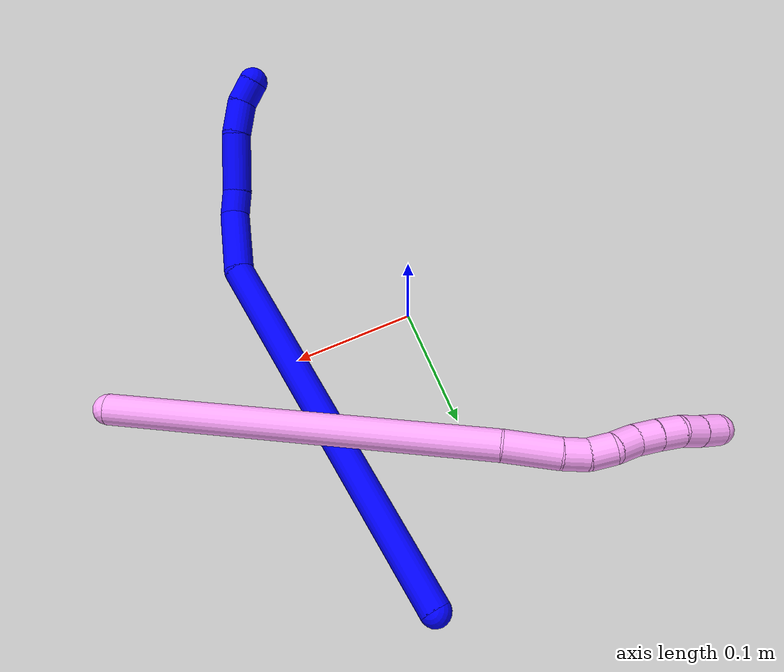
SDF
<sdf version="1.7">
 <world name="default">
  <model name="photoneo_s_sensor">
   <static>1</static>
   <pose>0 0 2 1.57079 1.57079 3.14159</pose>
   <link name="link">
    <inertial><mass>0.1</mass></inertial>
    <sensor name="sensor" type="depth">
     <update_rate>30</update_rate>
     <camera>
      <horizontal_fov>1.22</horizontal_fov>
      <image><width>1920</width><height>1200</height><format>B8G8R8</format></image>
      <clip><near>0.1</near><far>4</far></clip>
      <depth_camera><output>points</output></depth_camera>
     </camera>
     <plugin name="camera_plugin" filename="libgazebo_ros_depth_camera.so">
      <baseline>0.2</baseline>
      <alwaysOn>1</alwaysOn>
      <updateRate>0.0</updateRate>
      <cameraName>camera_ir</cameraName>
      <imageTopicName>/camera/color/image_raw</imageTopicName>
      <cameraInfoTopicName>/camera/color/camera_info</cameraInfoTopicName>
      <depthImageTopicName>/camera/depth/image_raw</depthImageTopicName>
      <depthImageCameraInfoTopicName>/camera/depth/camera_info</depthImageCameraInfoTopicName>
      <pointCloudTopicName>/camera/depth/points</pointCloudTopicName>
      <frameName>fr_optical</frameName>
      <pointCloudCutoff>0.1</pointCloudCutoff>
      <pointCloudCutoffMax>2.0</pointCloudCutoffMax>
      <distortionK1>0</distortionK1>
      <distortionK2>0</distortionK2>
      <distortionK3>0</distortionK3>
      <distortionT1>0</distortionT1>
      <distortionT2>0</distortionT2>
      <CxPrime>0</CxPrime>
      <Cx>0</Cx>
      <Cy>0</Cy>
      <focalLength>0</focalLength>
      <hackBaseline>0</hackBaseline>
     </plugin>
    </sensor>
   </link>
  </model>
  <model name="bin">
   <static>1</static>
   <link name="bottom">
    <collision name="collision-bottom">
     <pose>0 0 -0.01 0 -0 0</pose>
     <geometry><box><size>0.8 0.6 0.02</size></box></geometry>
     <surface>
      <friction><ode><mu>100</mu><mu2>100</mu2></ode></friction>
      <contact><collide_bitmask>65535</collide_bitmask></contact>
     </surface>
    </collision>
   </link>
   <link name="west_wall">
    <collision name="collision-west_wall">
     <pose>-0.41 0 0.1 0 -0 0</pose>
     <geometry><box><size>0.02 0.6 0.2</size></box></geometry>
     <surface>
      <friction><ode><mu>100</mu><mu2>100</mu2></ode></friction>
      <contact><collide_bitmask>65535</collide_bitmask></contact>
     </surface>
    </collision>
   </link>
   <link name="east_wall">
    <collision name="collision-east_wall">
     <pose>0.41 0 0.1 0 -0 0</pose>
     <geometry><box><size>0.02 0.6 0.2</size></box></geometry>
     <surface>
      <friction><ode><mu>100</mu><mu2>100</mu2></ode></friction>
      <contact><collide_bitmask>65535</collide_bitmask></contact>
     </surface>
    </collision>
   </link>
   <link name="south_wall">
    <collision name="collision-south_wall">
     <pose>0 -0.31 0.1 0 -0 0</pose>
     <geometry><box><size>0.8 0.02 0.2</size></box></geometry>
     <surface>
      <friction><ode><mu>100</mu><mu2>100</mu2></ode></friction>
      <contact><collide_bitmask>65535</collide_bitmask></contact>
     </surface>
    </collision>
   </link>
   <link name="north_wall">
    <collision name="collision-north_wall">
     <pose>0 0.31 0.1 0 -0 0</pose>
     <geometry><box><size>0.8 0.02 0.2</size></box></geometry>
     <surface>
      <friction><ode><mu>100</mu><mu2>100</mu2></ode></friction>
      <contact><collide_bitmask>65535</collide_bitmask></contact>
     </surface>
    </collision>
   </link>
  </model>
  <model name="1">
   <static>0</static>
   <link name="1">
    <collision name="collision-cylinder-e_1_1_4">
     <pose>0.01996 -0.154955 0.041575 1.30867 0.123776 0.094994</pose>
     <geometry><cylinder><radius>0.0125</radius><length>0.323344</length></cylinder></geometry>
     <surface>
      <friction><ode><mu>1.16</mu><mu2>1.16</mu2><slip1>0</slip1><slip2>0</slip2></ode></friction>
      <contact><ode><kp>1e+06</kp><kd>1</kd><max_vel>0</max_vel><min_depth>0.001</min_depth></ode></contact>
     </surface>
    </collision>
    <visual name="visual-cylinder-e_1_1_4">
     <pose>0.01996 -0.154955 0.041575 1.30867 0.123776 0.094994</pose>
     <geometry><cylinder><radius>0.0125</radius><length>0.323344</length></cylinder></geometry>
     <material><ambient>0 0 1 1</ambient></material>
    </visual>
    <collision name="collision-cylinder-e_2_4_5">
     <pose>0.033247 -0.336277 0.086145 1.45767 -0.246366 -0.220187</pose>
     <geometry><cylinder><radius>0.0125</radius><length>0.054728</length></cylinder></geometry>
     <surface>
      <friction><ode><mu>1.16</mu><mu2>1.16</mu2><slip1>0</slip1><slip2>0</slip2></ode></friction>
      <contact><ode><kp>1e+06</kp><kd>1</kd><max_vel>0</max_vel><min_depth>0.001</min_depth></ode></contact>
     </surface>
    </collision>
    <visual name="visual-cylinder-e_2_4_5">
     <pose>0.033247 -0.336277 0.086145 1.45767 -0.246366 -0.220187</pose>
     <geometry><cylinder><radius>0.0125</radius><length>0.054728</length></cylinder></geometry>
     <material><ambient>0 0 1 1</ambient></material>
    </visual>
    <collision name="collision-cylinder-e_3_5_6">
     <pose>0.021088 -0.371296 0.092104 1.24076 -0.540272 -0.390643</pose>
     <geometry><cylinder><radius>0.0125</radius><length>0.021325</length></cylinder></geometry>
     <surface>
      <friction><ode><mu>1.16</mu><mu2>1.16</mu2><slip1>0</slip1><slip2>0</slip2></ode></friction>
      <contact><ode><kp>1e+06</kp><kd>1</kd><max_vel>0</max_vel><min_depth>0.001</min_depth></ode></contact>
     </surface>
    </collision>
    <visual name="visual-cylinder-e_3_5_6">
     <pose>0.021088 -0.371296 0.092104 1.24076 -0.540272 -0.390643</pose>
     <geometry><cylinder><radius>0.0125</radius><length>0.021325</length></cylinder></geometry>
     <material><ambient>0 0 1 1</ambient></material>
    </visual>
    <collision name="collision-cylinder-e_4_6_7">
     <pose>0.003726 -0.399275 0.105463 1.07734 -0.496069 -0.300417</pose>
     <geometry><cylinder><radius>0.0125</radius><length>0.049909</length></cylinder></geometry>
     <surface>
      <friction><ode><mu>1.16</mu><mu2>1.16</mu2><slip1>0</slip1><slip2>0</slip2></ode></friction>
      <contact><ode><kp>1e+06</kp><kd>1</kd><max_vel>0</max_vel><min_depth>0.001</min_depth></ode></contact>
     </surface>
    </collision>
    <visual name="visual-cylinder-e_4_6_7">
     <pose>0.003726 -0.399275 0.105463 1.07734 -0.496069 -0.300417</pose>
     <geometry><cylinder><radius>0.0125</radius><length>0.049909</length></cylinder></geometry>
     <material><ambient>0 0 1 1</ambient></material>
    </visual>
    <collision name="collision-cylinder-e_5_7_8">
     <pose>-0.016408 -0.430213 0.119045 1.30289 -0.601119 -0.464148</pose>
     <geometry><cylinder><radius>0.0125</radius><length>0.029196</length></cylinder></geometry>
     <surface>
      <friction><ode><mu>1.16</mu><mu2>1.16</mu2><slip1>0</slip1><slip2>0</slip2></ode></friction>
      <contact><ode><kp>1e+06</kp><kd>1</kd><max_vel>0</max_vel><min_depth>0.001</min_depth></ode></contact>
     </surface>
    </collision>
    <visual name="visual-cylinder-e_5_7_8">
     <pose>-0.016408 -0.430213 0.119045 1.30289 -0.601119 -0.464148</pose>
     <geometry><cylinder><radius>0.0125</radius><length>0.029196</length></cylinder></geometry>
     <material><ambient>0 0 1 1</ambient></material>
    </visual>
    <collision name="collision-cylinder-e_6_8_2">
     <pose>-0.0336 -0.447507 0.124067 1.25864 -0.981596 -0.742137</pose>
     <geometry><cylinder><radius>0.0125</radius><length>0.021498</length></cylinder></geometry>
     <surface>
      <friction><ode><mu>1.16</mu><mu2>1.16</mu2><slip1>0</slip1><slip2>0</slip2></ode></friction>
      <contact><ode><kp>1e+06</kp><kd>1</kd><max_vel>0</max_vel><min_depth>0.001</min_depth></ode></contact>
     </surface>
    </collision>
    <visual name="visual-cylinder-e_6_8_2">
     <pose>-0.0336 -0.447507 0.124067 1.25864 -0.981596 -0.742137</pose>
     <geometry><cylinder><radius>0.0125</radius><length>0.021498</length></cylinder></geometry>
     <material><ambient>0 0 1 1</ambient></material>
    </visual>
    <collision name="collision-sphere-2">
     <pose>-0.042537 -0.453191 0.125901 0 -0 0</pose>
     <geometry><sphere><radius>0.0125</radius></sphere></geometry>
     <surface>
      <friction><ode><mu>1.16</mu><mu2>1.16</mu2><slip1>0</slip1><slip2>0</slip2></ode></friction>
      <contact><ode><kp>1e+06</kp><kd>1</kd><max_vel>0</max_vel><min_depth>0.001</min_depth></ode></contact>
     </surface>
    </collision>
    <visual name="visual-sphere-2">
     <pose>-0.042537 -0.453191 0.125901 0 -0 0</pose>
     <geometry><sphere><radius>0.0125</radius></sphere></geometry>
     <material><ambient>0 0 1 1</ambient></material>
    </visual>
    <collision name="collision-sphere-4">
     <pose>0.03992 -0.309909 0.08315 0 -0 0</pose>
     <geometry><sphere><radius>0.0125</radius></sphere></geometry>
     <surface>
      <friction><ode><mu>1.16</mu><mu2>1.16</mu2><slip1>0</slip1><slip2>0</slip2></ode></friction>
      <contact><ode><kp>1e+06</kp><kd>1</kd><max_vel>0</max_vel><min_depth>0.001</min_depth></ode></contact>
     </surface>
    </collision>
    <visual name="visual-sphere-4">
     <pose>0.03992 -0.309909 0.08315 0 -0 0</pose>
     <geometry><sphere><radius>0.0125</radius></sphere></geometry>
     <material><ambient>0 0 1 1</ambient></material>
    </visual>
    <collision name="collision-sphere-1">
     <geometry><sphere><radius>0.0125</radius></sphere></geometry>
     <surface>
      <friction><ode><mu>1.16</mu><mu2>1.16</mu2><slip1>0</slip1><slip2>0</slip2></ode></friction>
      <contact><ode><kp>1e+06</kp><kd>1</kd><max_vel>0</max_vel><min_depth>0.001</min_depth></ode></contact>
     </surface>
    </collision>
    <visual name="visual-sphere-1">
     <geometry><sphere><radius>0.0125</radius></sphere></geometry>
     <material><ambient>0 0 1 1</ambient></material>
    </visual>
    <collision name="collision-sphere-8">
     <pose>-0.024664 -0.441822 0.122232 0 -0 0</pose>
     <geometry><sphere><radius>0.0125</radius></sphere></geometry>
     <surface>
      <friction><ode><mu>1.16</mu><mu2>1.16</mu2><slip1>0</slip1><slip2>0</slip2></ode></friction>
      <contact><ode><kp>1e+06</kp><kd>1</kd><max_vel>0</max_vel><min_depth>0.001</min_depth></ode></contact>
     </surface>
    </collision>
    <visual name="visual-sphere-8">
     <pose>-0.024664 -0.441822 0.122232 0 -0 0</pose>
     <geometry><sphere><radius>0.0125</radius></sphere></geometry>
     <material><ambient>0 0 1 1</ambient></material>
    </visual>
    <collision name="collision-sphere-5">
     <pose>0.026573 -0.362645 0.089141 0 -0 0</pose>
     <geometry><sphere><radius>0.0125</radius></sphere></geometry>
     <surface>
      <friction><ode><mu>1.16</mu><mu2>1.16</mu2><slip1>0</slip1><slip2>0</slip2></ode></friction>
      <contact><ode><kp>1e+06</kp><kd>1</kd><max_vel>0</max_vel><min_depth>0.001</min_depth></ode></contact>
     </surface>
    </collision>
    <visual name="visual-sphere-5">
     <pose>0.026573 -0.362645 0.089141 0 -0 0</pose>
     <geometry><sphere><radius>0.0125</radius></sphere></geometry>
     <material><ambient>0 0 1 1</ambient></material>
    </visual>
    <collision name="collision-sphere-6">
     <pose>0.015604 -0.379946 0.095068 0 -0 0</pose>
     <geometry><sphere><radius>0.0125</radius></sphere></geometry>
     <surface>
      <friction><ode><mu>1.16</mu><mu2>1.16</mu2><slip1>0</slip1><slip2>0</slip2></ode></friction>
      <contact><ode><kp>1e+06</kp><kd>1</kd><max_vel>0</max_vel><min_depth>0.001</min_depth></ode></contact>
     </surface>
    </collision>
    <visual name="visual-sphere-6">
     <pose>0.015604 -0.379946 0.095068 0 -0 0</pose>
     <geometry><sphere><radius>0.0125</radius></sphere></geometry>
     <material><ambient>0 0 1 1</ambient></material>
    </visual>
    <collision name="collision-sphere-7">
     <pose>-0.008151 -0.418603 0.115859 0 -0 0</pose>
     <geometry><sphere><radius>0.0125</radius></sphere></geometry>
     <surface>
      <friction><ode><mu>1.16</mu><mu2>1.16</mu2><slip1>0</slip1><slip2>0</slip2></ode></friction>
      <contact><ode><kp>1e+06</kp><kd>1</kd><max_vel>0</max_vel><min_depth>0.001</min_depth></ode></contact>
     </surface>
    </collision>
    <visual name="visual-sphere-7">
     <pose>-0.008151 -0.418603 0.115859 0 -0 0</pose>
     <geometry><sphere><radius>0.0125</radius></sphere></geometry>
     <material><ambient>0 0 1 1</ambient></material>
    </visual>
    <inertial>
     <pose>0.015416 -0.237067 0.063056 0 -0 0</pose>
     <mass>0.5</mass>
     <inertia>
      <ixx>0.003079</ixx>
      <ixy>0</ixy>
      <ixz>0</ixz>
      <iyy>0.000997</iyy>
      <iyz>0</iyz>
      <izz>0.002416</izz>
     </inertia>
    </inertial>
   </link>
   <pose>0.076928 0.228733 0.011498 0.211923 0.383434 -0.004764</pose>
  </model>
  <model name="4">
   <static>0</static>
   <link name="4">
    <collision name="collision-cylinder-e_1_1_4">
     <pose>-0.074971 -0.001841 0.138414 0.013303 -0.496365 -0.003371</pose>
     <geometry><cylinder><radius>0.0125</radius><length>0.31485</length></cylinder></geometry>
     <surface>
      <friction><ode><mu>1.16</mu><mu2>1.16</mu2><slip1>0</slip1><slip2>0</slip2></ode></friction>
      <contact><ode><kp>1e+06</kp><kd>1</kd><max_vel>0</max_vel><min_depth>0.001</min_depth></ode></contact>
     </surface>
    </collision>
    <visual name="visual-cylinder-e_1_1_4">
     <pose>-0.074971 -0.001841 0.138414 0.013303 -0.496365 -0.003371</pose>
     <geometry><cylinder><radius>0.0125</radius><length>0.31485</length></cylinder></geometry>
     <material><ambient>1 0.65098 0.996078 1</ambient></material>
    </visual>
    <collision name="collision-cylinder-e_2_4_5">
     <pose>-0.162949 -0.005484 0.294618 0.100904 -0.628938 -0.032845</pose>
     <geometry><cylinder><radius>0.0125</radius><length>0.044222</length></cylinder></geometry>
     <surface>
      <friction><ode><mu>1.16</mu><mu2>1.16</mu2><slip1>0</slip1><slip2>0</slip2></ode></friction>
      <contact><ode><kp>1e+06</kp><kd>1</kd><max_vel>0</max_vel><min_depth>0.001</min_depth></ode></contact>
     </surface>
    </collision>
    <visual name="visual-cylinder-e_2_4_5">
     <pose>-0.162949 -0.005484 0.294618 0.100904 -0.628938 -0.032845</pose>
     <geometry><cylinder><radius>0.0125</radius><length>0.044222</length></cylinder></geometry>
     <material><ambient>1 0.65098 0.996078 1</ambient></material>
    </visual>
    <collision name="collision-cylinder-e_3_5_6">
     <pose>-0.181983 -0.009536 0.32034 0.276418 -0.631136 -0.090761</pose>
     <geometry><cylinder><radius>0.0125</radius><length>0.020428</length></cylinder></geometry>
     <surface>
      <friction><ode><mu>1.16</mu><mu2>1.16</mu2><slip1>0</slip1><slip2>0</slip2></ode></friction>
      <contact><ode><kp>1e+06</kp><kd>1</kd><max_vel>0</max_vel><min_depth>0.001</min_depth></ode></contact>
     </surface>
    </collision>
    <visual name="visual-cylinder-e_3_5_6">
     <pose>-0.181983 -0.009536 0.32034 0.276418 -0.631136 -0.090761</pose>
     <geometry><cylinder><radius>0.0125</radius><length>0.020428</length></cylinder></geometry>
     <material><ambient>1 0.65098 0.996078 1</ambient></material>
    </visual>
    <collision name="collision-cylinder-e_4_6_7">
     <pose>-0.191842 -0.015683 0.336789 0.429231 -0.388353 -0.085678</pose>
     <geometry><cylinder><radius>0.0125</radius><length>0.020237</length></cylinder></geometry>
     <surface>
      <friction><ode><mu>1.16</mu><mu2>1.16</mu2><slip1>0</slip1><slip2>0</slip2></ode></friction>
      <contact><ode><kp>1e+06</kp><kd>1</kd><max_vel>0</max_vel><min_depth>0.001</min_depth></ode></contact>
     </surface>
    </collision>
    <visual name="visual-cylinder-e_4_6_7">
     <pose>-0.191842 -0.015683 0.336789 0.429231 -0.388353 -0.085678</pose>
     <geometry><cylinder><radius>0.0125</radius><length>0.020237</length></cylinder></geometry>
     <material><ambient>1 0.65098 0.996078 1</ambient></material>
    </visual>
    <collision name="collision-cylinder-e_5_7_8">
     <pose>-0.200409 -0.026092 0.35142 0.816634 -0.487461 -0.214345</pose>
     <geometry><cylinder><radius>0.0125</radius><length>0.020221</length></cylinder></geometry>
     <surface>
      <friction><ode><mu>1.16</mu><mu2>1.16</mu2><slip1>0</slip1><slip2>0</slip2></ode></friction>
      <contact><ode><kp>1e+06</kp><kd>1</kd><max_vel>0</max_vel><min_depth>0.001</min_depth></ode></contact>
     </surface>
    </collision>
    <visual name="visual-cylinder-e_5_7_8">
     <pose>-0.200409 -0.026092 0.35142 0.816634 -0.487461 -0.214345</pose>
     <geometry><cylinder><radius>0.0125</radius><length>0.020221</length></cylinder></geometry>
     <material><ambient>1 0.65098 0.996078 1</ambient></material>
    </visual>
    <collision name="collision-cylinder-e_6_8_9">
     <pose>-0.21006 -0.037493 0.364764 0.594922 -0.512987 -0.160456</pose>
     <geometry><cylinder><radius>0.0125</radius><length>0.020033</length></cylinder></geometry>
     <surface>
      <friction><ode><mu>1.16</mu><mu2>1.16</mu2><slip1>0</slip1><slip2>0</slip2></ode></friction>
      <contact><ode><kp>1e+06</kp><kd>1</kd><max_vel>0</max_vel><min_depth>0.001</min_depth></ode></contact>
     </surface>
    </collision>
    <visual name="visual-cylinder-e_6_8_9">
     <pose>-0.21006 -0.037493 0.364764 0.594922 -0.512987 -0.160456</pose>
     <geometry><cylinder><radius>0.0125</radius><length>0.020033</length></cylinder></geometry>
     <material><ambient>1 0.65098 0.996078 1</ambient></material>
    </visual>
    <collision name="collision-cylinder-e_7_9_10">
     <pose>-0.220294 -0.047066 0.37905 0.585659 -0.560687 -0.173184</pose>
     <geometry><cylinder><radius>0.0125</radius><length>0.02</length></cylinder></geometry>
     <surface>
      <friction><ode><mu>1.16</mu><mu2>1.16</mu2><slip1>0</slip1><slip2>0</slip2></ode></friction>
      <contact><ode><kp>1e+06</kp><kd>1</kd><max_vel>0</max_vel><min_depth>0.001</min_depth></ode></contact>
     </surface>
    </collision>
    <visual name="visual-cylinder-e_7_9_10">
     <pose>-0.220294 -0.047066 0.37905 0.585659 -0.560687 -0.173184</pose>
     <geometry><cylinder><radius>0.0125</radius><length>0.02</length></cylinder></geometry>
     <material><ambient>1 0.65098 0.996078 1</ambient></material>
    </visual>
    <collision name="collision-cylinder-e_8_10_11">
     <pose>-0.232633 -0.056507 0.391411 0.731478 -0.77795 -0.311385</pose>
     <geometry><cylinder><radius>0.0125</radius><length>0.020009</length></cylinder></geometry>
     <surface>
      <friction><ode><mu>1.16</mu><mu2>1.16</mu2><slip1>0</slip1><slip2>0</slip2></ode></friction>
      <contact><ode><kp>1e+06</kp><kd>1</kd><max_vel>0</max_vel><min_depth>0.001</min_depth></ode></contact>
     </surface>
    </collision>
    <visual name="visual-cylinder-e_8_10_11">
     <pose>-0.232633 -0.056507 0.391411 0.731478 -0.77795 -0.311385</pose>
     <geometry><cylinder><radius>0.0125</radius><length>0.020009</length></cylinder></geometry>
     <material><ambient>1 0.65098 0.996078 1</ambient></material>
    </visual>
    <collision name="collision-cylinder-e_9_11_2">
     <pose>-0.246221 -0.066344 0.402294 0.73815 -0.716289 -0.287549</pose>
     <geometry><cylinder><radius>0.0125</radius><length>0.020001</length></cylinder></geometry>
     <surface>
      <friction><ode><mu>1.16</mu><mu2>1.16</mu2><slip1>0</slip1><slip2>0</slip2></ode></friction>
      <contact><ode><kp>1e+06</kp><kd>1</kd><max_vel>0</max_vel><min_depth>0.001</min_depth></ode></contact>
     </surface>
    </collision>
    <visual name="visual-cylinder-e_9_11_2">
     <pose>-0.246221 -0.066344 0.402294 0.73815 -0.716289 -0.287549</pose>
     <geometry><cylinder><radius>0.0125</radius><length>0.020001</length></cylinder></geometry>
     <material><ambient>1 0.65098 0.996078 1</ambient></material>
    </visual>
    <collision name="collision-sphere-2">
     <pose>-0.252787 -0.071419 0.407874 0 -0 0</pose>
     <geometry><sphere><radius>0.0125</radius></sphere></geometry>
     <surface>
      <friction><ode><mu>1.16</mu><mu2>1.16</mu2><slip1>0</slip1><slip2>0</slip2></ode></friction>
      <contact><ode><kp>1e+06</kp><kd>1</kd><max_vel>0</max_vel><min_depth>0.001</min_depth></ode></contact>
     </surface>
    </collision>
    <visual name="visual-sphere-2">
     <pose>-0.252787 -0.071419 0.407874 0 -0 0</pose>
     <geometry><sphere><radius>0.0125</radius></sphere></geometry>
     <material><ambient>1 0.65098 0.996078 1</ambient></material>
    </visual>
    <collision name="collision-sphere-11">
     <pose>-0.239655 -0.061268 0.396715 0 -0 0</pose>
     <geometry><sphere><radius>0.0125</radius></sphere></geometry>
     <surface>
      <friction><ode><mu>1.16</mu><mu2>1.16</mu2><slip1>0</slip1><slip2>0</slip2></ode></friction>
      <contact><ode><kp>1e+06</kp><kd>1</kd><max_vel>0</max_vel><min_depth>0.001</min_depth></ode></contact>
     </surface>
    </collision>
    <visual name="visual-sphere-11">
     <pose>-0.239655 -0.061268 0.396715 0 -0 0</pose>
     <geometry><sphere><radius>0.0125</radius></sphere></geometry>
     <material><ambient>1 0.65098 0.996078 1</ambient></material>
    </visual>
    <collision name="collision-sphere-10">
     <pose>-0.225612 -0.051747 0.386107 0 -0 0</pose>
     <geometry><sphere><radius>0.0125</radius></sphere></geometry>
     <surface>
      <friction><ode><mu>1.16</mu><mu2>1.16</mu2><slip1>0</slip1><slip2>0</slip2></ode></friction>
      <contact><ode><kp>1e+06</kp><kd>1</kd><max_vel>0</max_vel><min_depth>0.001</min_depth></ode></contact>
     </surface>
    </collision>
    <visual name="visual-sphere-10">
     <pose>-0.225612 -0.051747 0.386107 0 -0 0</pose>
     <geometry><sphere><radius>0.0125</radius></sphere></geometry>
     <material><ambient>1 0.65098 0.996078 1</ambient></material>
    </visual>
    <collision name="collision-sphere-9">
     <pose>-0.214976 -0.042384 0.371992 0 -0 0</pose>
     <geometry><sphere><radius>0.0125</radius></sphere></geometry>
     <surface>
      <friction><ode><mu>1.16</mu><mu2>1.16</mu2><slip1>0</slip1><slip2>0</slip2></ode></friction>
      <contact><ode><kp>1e+06</kp><kd>1</kd><max_vel>0</max_vel><min_depth>0.001</min_depth></ode></contact>
     </surface>
    </collision>
    <visual name="visual-sphere-9">
     <pose>-0.214976 -0.042384 0.371992 0 -0 0</pose>
     <geometry><sphere><radius>0.0125</radius></sphere></geometry>
     <material><ambient>1 0.65098 0.996078 1</ambient></material>
    </visual>
    <collision name="collision-sphere-4">
     <pose>-0.149942 -0.003683 0.276829 0 -0 0</pose>
     <geometry><sphere><radius>0.0125</radius></sphere></geometry>
     <surface>
      <friction><ode><mu>1.16</mu><mu2>1.16</mu2><slip1>0</slip1><slip2>0</slip2></ode></friction>
      <contact><ode><kp>1e+06</kp><kd>1</kd><max_vel>0</max_vel><min_depth>0.001</min_depth></ode></contact>
     </surface>
    </collision>
    <visual name="visual-sphere-4">
     <pose>-0.149942 -0.003683 0.276829 0 -0 0</pose>
     <geometry><sphere><radius>0.0125</radius></sphere></geometry>
     <material><ambient>1 0.65098 0.996078 1</ambient></material>
    </visual>
    <collision name="collision-sphere-1">
     <geometry><sphere><radius>0.0125</radius></sphere></geometry>
     <surface>
      <friction><ode><mu>1.16</mu><mu2>1.16</mu2><slip1>0</slip1><slip2>0</slip2></ode></friction>
      <contact><ode><kp>1e+06</kp><kd>1</kd><max_vel>0</max_vel><min_depth>0.001</min_depth></ode></contact>
     </surface>
    </collision>
    <visual name="visual-sphere-1">
     <geometry><sphere><radius>0.0125</radius></sphere></geometry>
     <material><ambient>1 0.65098 0.996078 1</ambient></material>
    </visual>
    <collision name="collision-sphere-8">
     <pose>-0.205144 -0.032602 0.357536 0 -0 0</pose>
     <geometry><sphere><radius>0.0125</radius></sphere></geometry>
     <surface>
      <friction><ode><mu>1.16</mu><mu2>1.16</mu2><slip1>0</slip1><slip2>0</slip2></ode></friction>
      <contact><ode><kp>1e+06</kp><kd>1</kd><max_vel>0</max_vel><min_depth>0.001</min_depth></ode></contact>
     </surface>
    </collision>
    <visual name="visual-sphere-8">
     <pose>-0.205144 -0.032602 0.357536 0 -0 0</pose>
     <geometry><sphere><radius>0.0125</radius></sphere></geometry>
     <material><ambient>1 0.65098 0.996078 1</ambient></material>
    </visual>
    <collision name="collision-sphere-5">
     <pose>-0.175957 -0.007285 0.312407 0 -0 0</pose>
     <geometry><sphere><radius>0.0125</radius></sphere></geometry>
     <surface>
      <friction><ode><mu>1.16</mu><mu2>1.16</mu2><slip1>0</slip1><slip2>0</slip2></ode></friction>
      <contact><ode><kp>1e+06</kp><kd>1</kd><max_vel>0</max_vel><min_depth>0.001</min_depth></ode></contact>
     </surface>
    </collision>
    <visual name="visual-sphere-5">
     <pose>-0.175957 -0.007285 0.312407 0 -0 0</pose>
     <geometry><sphere><radius>0.0125</radius></sphere></geometry>
     <material><ambient>1 0.65098 0.996078 1</ambient></material>
    </visual>
    <collision name="collision-sphere-6">
     <pose>-0.18801 -0.011786 0.328273 0 -0 0</pose>
     <geometry><sphere><radius>0.0125</radius></sphere></geometry>
     <surface>
      <friction><ode><mu>1.16</mu><mu2>1.16</mu2><slip1>0</slip1><slip2>0</slip2></ode></friction>
      <contact><ode><kp>1e+06</kp><kd>1</kd><max_vel>0</max_vel><min_depth>0.001</min_depth></ode></contact>
     </surface>
    </collision>
    <visual name="visual-sphere-6">
     <pose>-0.18801 -0.011786 0.328273 0 -0 0</pose>
     <geometry><sphere><radius>0.0125</radius></sphere></geometry>
     <material><ambient>1 0.65098 0.996078 1</ambient></material>
    </visual>
    <collision name="collision-sphere-7">
     <pose>-0.195673 -0.019581 0.345304 0 -0 0</pose>
     <geometry><sphere><radius>0.0125</radius></sphere></geometry>
     <surface>
      <friction><ode><mu>1.16</mu><mu2>1.16</mu2><slip1>0</slip1><slip2>0</slip2></ode></friction>
      <contact><ode><kp>1e+06</kp><kd>1</kd><max_vel>0</max_vel><min_depth>0.001</min_depth></ode></contact>
     </surface>
    </collision>
    <visual name="visual-sphere-7">
     <pose>-0.195673 -0.019581 0.345304 0 -0 0</pose>
     <geometry><sphere><radius>0.0125</radius></sphere></geometry>
     <material><ambient>1 0.65098 0.996078 1</ambient></material>
    </visual>
    <inertial>
     <pose>-0.121312 -0.012024 0.21568 0 -0 0</pose>
     <mass>0.5</mass>
     <inertia>
      <ixx>0.002284</ixx>
      <ixy>0</ixy>
      <ixz>0</ixz>
      <iyy>0.002616</iyy>
      <iyz>0</iyz>
      <izz>0.001323</izz>
     </inertia>
    </inertial>
   </link>
   <pose>0.254677 -0.01653 0.0124 0.7341 -0.776914 -1.18362</pose>
  </model>
 </world>
</sdf>
